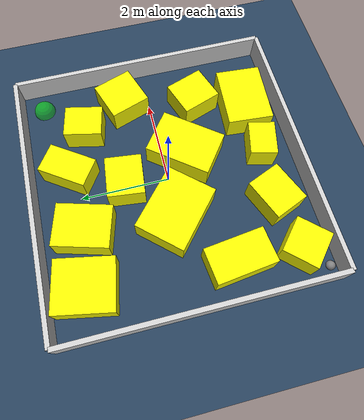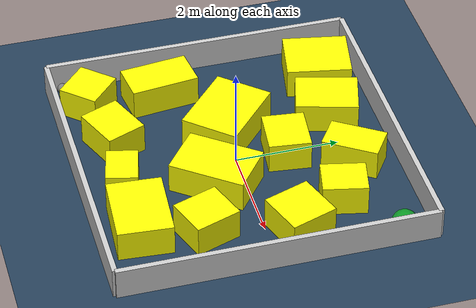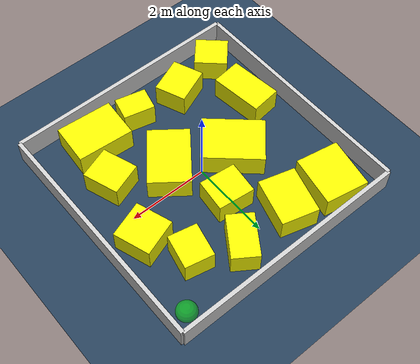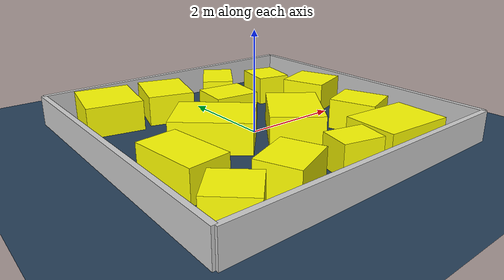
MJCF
<?xml version="1.0" ?>
<mujoco model="generated_environment">
  <option timestep="0.01" integrator="RK4" cone="elliptic"/>
  <default>
    <geom density="1"/>
  </default>
  <asset>
    <texture builtin="gradient" height="3072" rgb1="0.3 0.5 0.7" rgb2="0 0 0" type="skybox" width="512"/>
    <texture builtin="checker" height="300" mark="edge" markrgb="0.8 0.8 0.8" name="groundplane" rgb1="0.2 0.3 0.4" rgb2="0.1 0.2 0.3" type="2d" width="300"/>
    <material name="groundplane" reflectance="0.2" texrepeat="5 5" texture="groundplane" texuniform="true"/>
    <material name="robot" rgba="1.0 1.0 0.0 1.0"/>
  </asset>
  <worldbody>
    <light dir="0 0 -1" directional="true" pos="0 0 1.5"/>
    <geom condim="4" friction="0.5 0.005 0.001" material="groundplane" name="floor" size="0 0 0.05" type="plane"/>
    <body name="walls">
      <geom name="wall_1" condim="4" pos="-3.0 0.0 0.3" rgba="0.800000011920929 0.800000011920929 0.800000011920929 1.0" size="0.05 3.0 0.3" type="box"/>
      <geom name="wall_2" condim="4" pos="3.0 0.0 0.3" rgba="0.800000011920929 0.800000011920929 0.800000011920929 1.0" size="0.05 3.0 0.3" type="box"/>
      <geom name="wall_3" condim="4" pos="0.0 -3.0 0.3" rgba="0.800000011920929 0.800000011920929 0.800000011920929 1.0" size="3.0 0.05 0.3" type="box"/>
      <geom name="wall_4" condim="4" pos="0.0 3.0 0.3" rgba="0.800000011920929 0.800000011920929 0.800000011920929 1.0" size="3.0 0.05 0.3" type="box"/>
    </body>
    <body name="robot">
      <joint name="joint_x" type="slide" pos="0 0 0" axis="1 0 0"/>
      <joint name="joint_y" type="slide" pos="0 0 0" axis="0 1 0"/>
      <geom name="robot" type="sphere" pos="-2.75 -2.75 0.2" size="0.1 0.0 0.0" mass="5.0" friction="1.0 0.005 0.001" condim="4" rgba="0.5 0.5 0.5 1.0"/>
    </body>
    <body name="obstacle_1_movable">
      <geom name="obstacle_1_movable" condim="4" pos="1.83128496722686 -1.0496065544476867 0.3" euler="0 0 289.3055082665743" friction="0.0 0.005 0.001" rgba="1 1 0 1" size="0.4533845397754989 0.40911276505519306 0.3" type="box" mass="0.1"/>
      <joint type="free"/>
    </body>
    <body name="obstacle_2_movable">
      <geom name="obstacle_2_movable" condim="4" pos="-1.0402132784465328 -2.125503301860109 0.3" euler="0 0 202.2072608974227" friction="0.0 0.005 0.001" rgba="1 1 0 1" size="0.4708507040831961 0.3978989787501094 0.3" type="box" mass="0.1"/>
      <joint type="free"/>
    </body>
    <body name="obstacle_3_movable">
      <geom name="obstacle_3_movable" condim="4" pos="1.4464643815389695 -2.1912691734746286 0.3" euler="0 0 355.9039709144245" friction="0.0 0.005 0.001" rgba="1 1 0 1" size="0.7016520922694268 0.5175218243148079 0.3" type="box" mass="0.1"/>
      <joint type="free"/>
    </body>
    <body name="obstacle_4_movable">
      <geom name="obstacle_4_movable" condim="4" pos="0.549564284968524 -0.5287654422921997 0.3" euler="0 0 52.44868967909127" friction="0.0 0.005 0.001" rgba="1 1 0 1" size="0.7386537646291537 0.5111900429981715 0.3" type="box" mass="0.1"/>
      <joint type="free"/>
    </body>
    <body name="obstacle_5_movable">
      <geom name="obstacle_5_movable" condim="4" pos="1.6387515052701183 1.5981497730613068 0.3" euler="0 0 167.67031906720342" friction="0.0 0.005 0.001" rgba="1 1 0 1" size="0.3584012121275523 0.42450256835570305 0.3" type="box" mass="0.1"/>
      <joint type="free"/>
    </body>
    <body name="obstacle_6_movable">
      <geom name="obstacle_6_movable" condim="4" pos="-0.8965586470460458 0.06023481732953373 0.3" euler="0 0 138.24011476535813" friction="0.0 0.005 0.001" rgba="1 1 0 1" size="0.7506048270010006 0.5674683454373513 0.3" type="box" mass="0.1"/>
      <joint type="free"/>
    </body>
    <body name="obstacle_7_movable">
      <geom name="obstacle_7_movable" condim="4" pos="0.6235288483147863 2.118656868154931 0.3" euler="0 0 145.90653374213247" friction="0.0 0.005 0.001" rgba="1 1 0 1" size="0.3284346584686927 0.5446383027320092 0.3" type="box" mass="0.1"/>
      <joint type="free"/>
    </body>
    <body name="obstacle_8_movable">
      <geom name="obstacle_8_movable" condim="4" pos="-2.1835501405166973 -0.9472947903750057 0.3" euler="0 0 276.879029333812" friction="0.0 0.005 0.001" rgba="1 1 0 1" size="0.6628052107688052 0.38249542467726105 0.3" type="box" mass="0.1"/>
      <joint type="free"/>
    </body>
    <body name="obstacle_9_movable">
      <geom name="obstacle_9_movable" condim="4" pos="-0.8106007994675108 2.0186960325250487 0.3" euler="0 0 344.1822999939067" friction="0.0 0.005 0.001" rgba="1 1 0 1" size="0.4601186609525955 0.6005826845810138 0.3" type="box" mass="0.1"/>
      <joint type="free"/>
    </body>
    <body name="obstacle_10_movable">
      <geom name="obstacle_10_movable" condim="4" pos="0.2393042424043652 -2.2399940994254552 0.3" euler="0 0 256.49528085144357" friction="0.0 0.005 0.001" rgba="1 1 0 1" size="0.30016150610832515 0.39240916921318536 0.3" type="box" mass="0.1"/>
      <joint type="free"/>
    </body>
    <body name="obstacle_11_movable">
      <geom name="obstacle_11_movable" condim="4" pos="2.168285452846419 0.6065481036439113 0.3" euler="0 0 289.0165915920601" friction="0.0 0.005 0.001" rgba="1 1 0 1" size="0.46194586751814065 0.4605399293479629 0.3" type="box" mass="0.1"/>
      <joint type="free"/>
    </body>
    <body name="obstacle_12_movable">
      <geom name="obstacle_12_movable" condim="4" pos="-2.0053398483251645 2.1854311753951183 0.3" euler="0 0 79.25408084835931" friction="0.0 0.005 0.001" rgba="1 1 0 1" size="0.6302969933982798 0.543248073003763 0.3" type="box" mass="0.1"/>
      <joint type="free"/>
    </body>
    <body name="obstacle_13_movable">
      <geom name="obstacle_13_movable" condim="4" pos="-2.2509376304947555 -2.3369760287387527 0.3" euler="0 0 47.496014139043425" friction="0.0 0.005 0.001" rgba="1 1 0 1" size="0.38966407854171364 0.40909629526855984 0.3" type="box" mass="0.1"/>
      <joint type="free"/>
    </body>
    <body name="obstacle_14_movable">
      <geom name="obstacle_14_movable" condim="4" pos="0.07623271589089553 0.9557050042641091 0.3" euler="0 0 173.59376967296464" friction="0.0 0.005 0.001" rgba="1 1 0 1" size="0.45884768330451225 0.4048238673120335 0.3" type="box" mass="0.1"/>
      <joint type="free"/>
    </body>
    <site name="goal" type="sphere" size="0.25 0.25 0.25" rgba="0 1 0 0.5" pos="2.5 2.5 0.0"/>
  </worldbody>
  <actuator>
    <motor name="actuator_x" joint="joint_x" gear="1" ctrlrange="-1 1"/>
    <motor name="actuator_y" joint="joint_y" gear="1" ctrlrange="-1 1"/>
  </actuator>
</mujoco>
